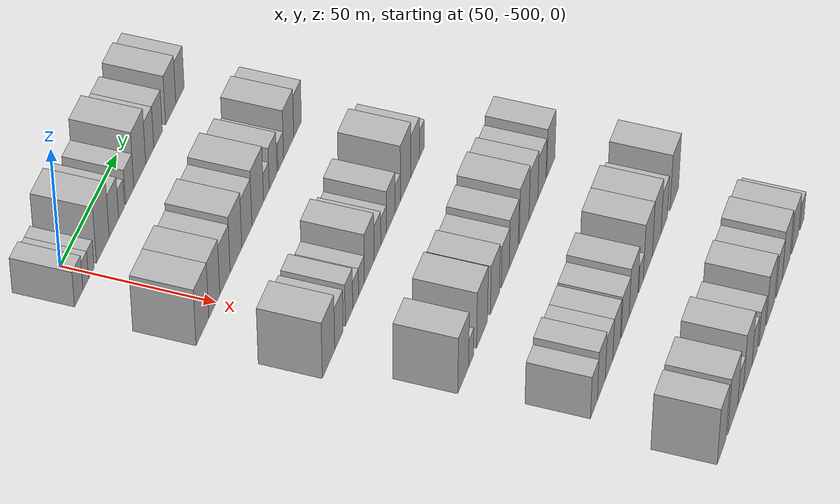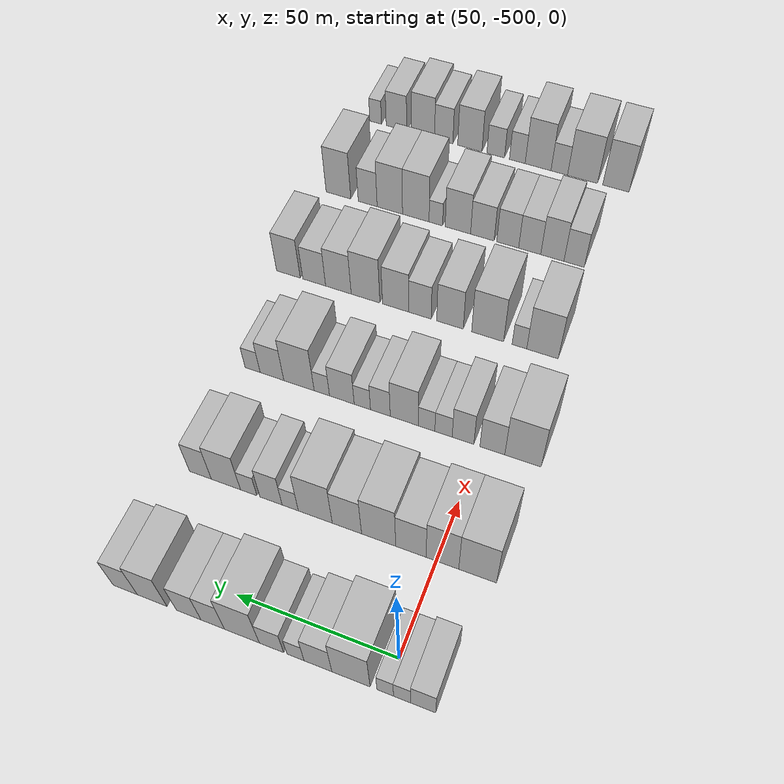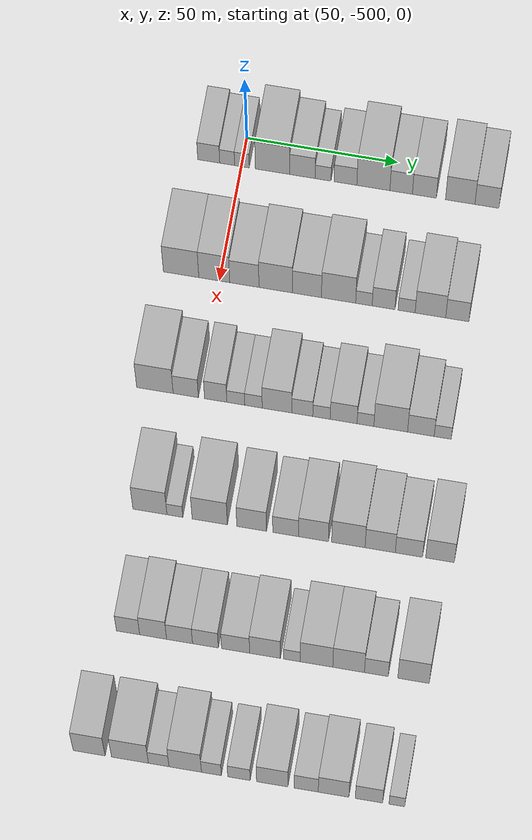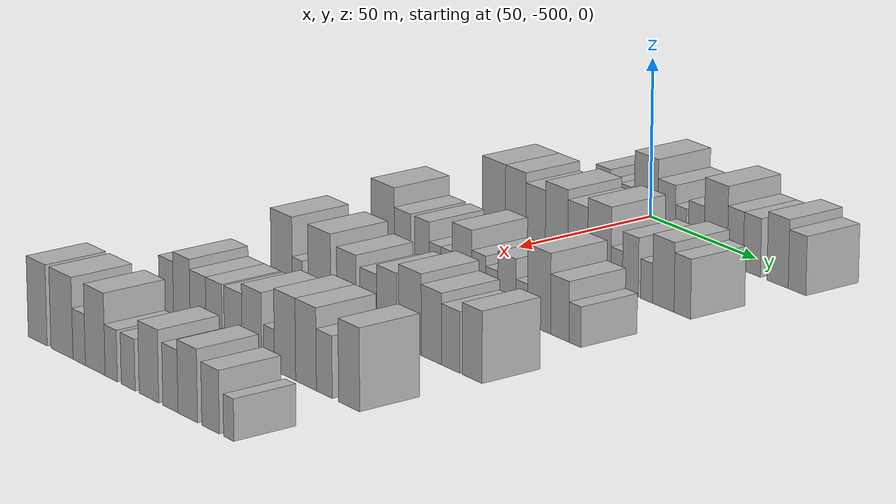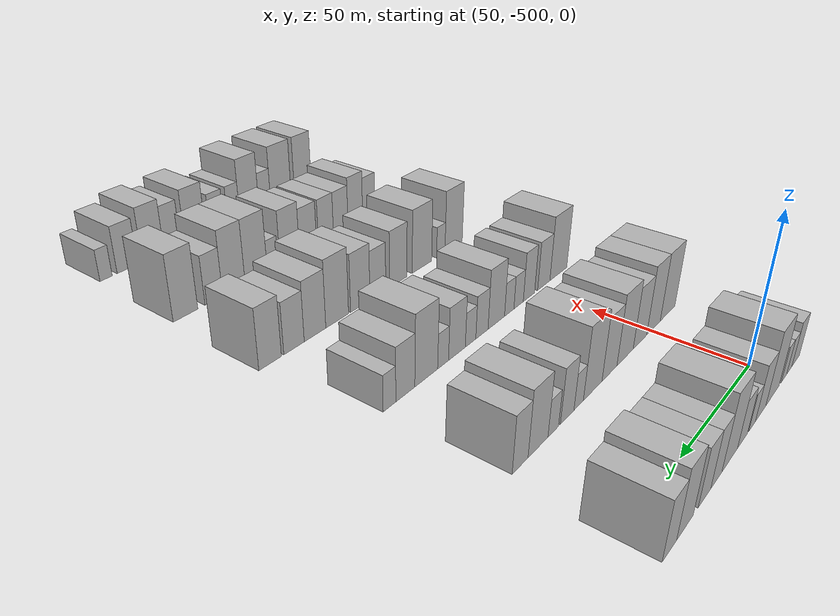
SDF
<sdf version="1.6">
 <world name="default">
  <model name="building_13">
   <static>1</static>
   <pose>50.0000 -510.8066 0 0.000000 0.000000 0.000000</pose>
   <link name="link">
    <pose>0 0 7.50 0 0 0</pose>
    <collision name="collision"><geometry><box><size>20.0000 7.2513 15.0000</size></box></geometry></collision>
    <visual name="visual">
     <cast_shadows>0</cast_shadows>
     <geometry><box><size>20.0000 7.2513 15.0000</size></box></geometry>
     <material>
      <script>
       <uri>model://HANNAS_wall/materials/scripts</uri>
       <uri>model://HANNAS_wall/materials/textures</uri>
       <name>vrc/HANNAS_wall</name>
      </script>
     </material>
    </visual>
   </link>
  </model>
  <model name="building_14">
   <static>1</static>
   <pose>50.0000 -504.7270 0 0.000000 0.000000 0.000000</pose>
   <link name="link">
    <pose>0 0 6.00 0 0 0</pose>
    <collision name="collision"><geometry><box><size>20.0000 4.9079 12.0000</size></box></geometry></collision>
    <visual name="visual">
     <cast_shadows>0</cast_shadows>
     <geometry><box><size>20.0000 4.9079 12.0000</size></box></geometry>
     <material>
      <script>
       <uri>model://HANNAS_wall/materials/scripts</uri>
       <uri>model://HANNAS_wall/materials/textures</uri>
       <name>vrc/HANNAS_wall</name>
      </script>
     </material>
    </visual>
   </link>
  </model>
  <model name="building_15">
   <static>1</static>
   <pose>50.0000 -499.8452 0 0.000000 0.000000 0.000000</pose>
   <link name="link">
    <pose>0 0 6.00 0 0 0</pose>
    <collision name="collision"><geometry><box><size>20.0000 4.8557 12.0000</size></box></geometry></collision>
    <visual name="visual">
     <cast_shadows>0</cast_shadows>
     <geometry><box><size>20.0000 4.8557 12.0000</size></box></geometry>
     <material>
      <script>
       <uri>model://HANNAS_wall/materials/scripts</uri>
       <uri>model://HANNAS_wall/materials/textures</uri>
       <name>vrc/HANNAS_wall</name>
      </script>
     </material>
    </visual>
   </link>
  </model>
  <model name="building_16">
   <static>1</static>
   <pose>50.0000 -489.7420 0 0.000000 0.000000 0.000000</pose>
   <link name="link">
    <pose>0 0 12.00 0 0 0</pose>
    <collision name="collision"><geometry><box><size>20.0000 11.3507 24.0000</size></box></geometry></collision>
    <visual name="visual">
     <cast_shadows>0</cast_shadows>
     <geometry><box><size>20.0000 11.3507 24.0000</size></box></geometry>
     <material>
      <script>
       <uri>model://HANNAS_wall/materials/scripts</uri>
       <uri>model://HANNAS_wall/materials/textures</uri>
       <name>vrc/HANNAS_wall</name>
      </script>
     </material>
    </visual>
   </link>
  </model>
  <model name="building_17">
   <static>1</static>
   <pose>50.0000 -479.8857 0 0.000000 0.000000 0.000000</pose>
   <link name="link">
    <pose>0 0 9.00 0 0 0</pose>
    <collision name="collision"><geometry><box><size>20.0000 8.3620 18.0000</size></box></geometry></collision>
    <visual name="visual">
     <cast_shadows>0</cast_shadows>
     <geometry><box><size>20.0000 8.3620 18.0000</size></box></geometry>
     <material>
      <script>
       <uri>model://HANNAS_wall/materials/scripts</uri>
       <uri>model://HANNAS_wall/materials/textures</uri>
       <name>vrc/HANNAS_wall</name>
      </script>
     </material>
    </visual>
   </link>
  </model>
  <model name="building_18">
   <static>1</static>
   <pose>50.0000 -473.1001 0 0.000000 0.000000 0.000000</pose>
   <link name="link">
    <pose>0 0 6.00 0 0 0</pose>
    <collision name="collision"><geometry><box><size>20.0000 5.2090 12.0000</size></box></geometry></collision>
    <visual name="visual">
     <cast_shadows>0</cast_shadows>
     <geometry><box><size>20.0000 5.2090 12.0000</size></box></geometry>
     <material>
      <script>
       <uri>model://HANNAS_wall/materials/scripts</uri>
       <uri>model://HANNAS_wall/materials/textures</uri>
       <name>vrc/HANNAS_wall</name>
      </script>
     </material>
    </visual>
   </link>
  </model>
  <model name="building_19">
   <static>1</static>
   <pose>50.0000 -465.7536 0 0.000000 0.000000 0.000000</pose>
   <link name="link">
    <pose>0 0 7.50 0 0 0</pose>
    <collision name="collision"><geometry><box><size>20.0000 7.4841 15.0000</size></box></geometry></collision>
    <visual name="visual">
     <cast_shadows>0</cast_shadows>
     <geometry><box><size>20.0000 7.4841 15.0000</size></box></geometry>
     <material>
      <script>
       <uri>model://HANNAS_wall/materials/scripts</uri>
       <uri>model://HANNAS_wall/materials/textures</uri>
       <name>vrc/HANNAS_wall</name>
      </script>
     </material>
    </visual>
   </link>
  </model>
  <model name="building_20">
   <static>1</static>
   <pose>50.0000 -456.5789 0 0.000000 0.000000 0.000000</pose>
   <link name="link">
    <pose>0 0 12.00 0 0 0</pose>
    <collision name="collision"><geometry><box><size>20.0000 10.8653 24.0000</size></box></geometry></collision>
    <visual name="visual">
     <cast_shadows>0</cast_shadows>
     <geometry><box><size>20.0000 10.8653 24.0000</size></box></geometry>
     <material>
      <script>
       <uri>model://HANNAS_wall/materials/scripts</uri>
       <uri>model://HANNAS_wall/materials/textures</uri>
       <name>vrc/HANNAS_wall</name>
      </script>
     </material>
    </visual>
   </link>
  </model>
  <model name="building_21">
   <static>1</static>
   <pose>50.0000 -447.4521 0 0.000000 0.000000 0.000000</pose>
   <link name="link">
    <pose>0 0 9.00 0 0 0</pose>
    <collision name="collision"><geometry><box><size>20.0000 7.3885 18.0000</size></box></geometry></collision>
    <visual name="visual">
     <cast_shadows>0</cast_shadows>
     <geometry><box><size>20.0000 7.3885 18.0000</size></box></geometry>
     <material>
      <script>
       <uri>model://HANNAS_wall/materials/scripts</uri>
       <uri>model://HANNAS_wall/materials/textures</uri>
       <name>vrc/HANNAS_wall</name>
      </script>
     </material>
    </visual>
   </link>
  </model>
  <model name="building_22">
   <static>1</static>
   <pose>50.0000 -439.8254 0 0.000000 0.000000 0.000000</pose>
   <link name="link">
    <pose>0 0 9.00 0 0 0</pose>
    <collision name="collision"><geometry><box><size>20.0000 7.8648 18.0000</size></box></geometry></collision>
    <visual name="visual">
     <cast_shadows>0</cast_shadows>
     <geometry><box><size>20.0000 7.8648 18.0000</size></box></geometry>
     <material>
      <script>
       <uri>model://HANNAS_wall/materials/scripts</uri>
       <uri>model://HANNAS_wall/materials/textures</uri>
       <name>vrc/HANNAS_wall</name>
      </script>
     </material>
    </visual>
   </link>
  </model>
  <model name="building_23">
   <static>1</static>
   <pose>50.0000 -428.0699 0 0.000000 0.000000 0.000000</pose>
   <link name="link">
    <pose>0 0 10.50 0 0 0</pose>
    <collision name="collision"><geometry><box><size>20.0000 9.6462 21.0000</size></box></geometry></collision>
    <visual name="visual">
     <cast_shadows>0</cast_shadows>
     <geometry><box><size>20.0000 9.6462 21.0000</size></box></geometry>
     <material>
      <script>
       <uri>model://HANNAS_wall/materials/scripts</uri>
       <uri>model://HANNAS_wall/materials/textures</uri>
       <name>vrc/HANNAS_wall</name>
      </script>
     </material>
    </visual>
   </link>
  </model>
  <model name="building_24">
   <static>1</static>
   <pose>50.0000 -419.3129 0 0.000000 0.000000 0.000000</pose>
   <link name="link">
    <pose>0 0 9.00 0 0 0</pose>
    <collision name="collision"><geometry><box><size>20.0000 7.8678 18.0000</size></box></geometry></collision>
    <visual name="visual">
     <cast_shadows>0</cast_shadows>
     <geometry><box><size>20.0000 7.8678 18.0000</size></box></geometry>
     <material>
      <script>
       <uri>model://HANNAS_wall/materials/scripts</uri>
       <uri>model://HANNAS_wall/materials/textures</uri>
       <name>vrc/HANNAS_wall</name>
      </script>
     </material>
    </visual>
   </link>
  </model>
  <model name="building_147">
   <static>1</static>
   <pose>90.0000 -512.6464 0 0.000000 0.000000 0.000000</pose>
   <link name="link">
    <pose>0 0 12.00 0 0 0</pose>
    <collision name="collision"><geometry><box><size>20.0000 11.5805 24.0000</size></box></geometry></collision>
    <visual name="visual">
     <cast_shadows>0</cast_shadows>
     <geometry><box><size>20.0000 11.5805 24.0000</size></box></geometry>
     <material>
      <script>
       <uri>model://HANNAS_wall/materials/scripts</uri>
       <uri>model://HANNAS_wall/materials/textures</uri>
       <name>vrc/HANNAS_wall</name>
      </script>
     </material>
    </visual>
   </link>
  </model>
  <model name="building_148">
   <static>1</static>
   <pose>90.0000 -501.7982 0 0.000000 0.000000 0.000000</pose>
   <link name="link">
    <pose>0 0 12.00 0 0 0</pose>
    <collision name="collision"><geometry><box><size>20.0000 10.1158 24.0000</size></box></geometry></collision>
    <visual name="visual">
     <cast_shadows>0</cast_shadows>
     <geometry><box><size>20.0000 10.1158 24.0000</size></box></geometry>
     <material>
      <script>
       <uri>model://HANNAS_wall/materials/scripts</uri>
       <uri>model://HANNAS_wall/materials/textures</uri>
       <name>vrc/HANNAS_wall</name>
      </script>
     </material>
    </visual>
   </link>
  </model>
  <model name="building_149">
   <static>1</static>
   <pose>90.0000 -491.9621 0 0.000000 0.000000 0.000000</pose>
   <link name="link">
    <pose>0 0 10.50 0 0 0</pose>
    <collision name="collision"><geometry><box><size>20.0000 9.5564 21.0000</size></box></geometry></collision>
    <visual name="visual">
     <cast_shadows>0</cast_shadows>
     <geometry><box><size>20.0000 9.5564 21.0000</size></box></geometry>
     <material>
      <script>
       <uri>model://HANNAS_wall/materials/scripts</uri>
       <uri>model://HANNAS_wall/materials/textures</uri>
       <name>vrc/HANNAS_wall</name>
      </script>
     </material>
    </visual>
   </link>
  </model>
  <model name="building_150">
   <static>1</static>
   <pose>90.0000 -481.7304 0 0.000000 0.000000 0.000000</pose>
   <link name="link">
    <pose>0 0 12.00 0 0 0</pose>
    <collision name="collision"><geometry><box><size>20.0000 10.9070 24.0000</size></box></geometry></collision>
    <visual name="visual">
     <cast_shadows>0</cast_shadows>
     <geometry><box><size>20.0000 10.9070 24.0000</size></box></geometry>
     <material>
      <script>
       <uri>model://HANNAS_wall/materials/scripts</uri>
       <uri>model://HANNAS_wall/materials/textures</uri>
       <name>vrc/HANNAS_wall</name>
      </script>
     </material>
    </visual>
   </link>
  </model>
  <model name="building_151">
   <static>1</static>
   <pose>90.0000 -471.5309 0 0.000000 0.000000 0.000000</pose>
   <link name="link">
    <pose>0 0 10.50 0 0 0</pose>
    <collision name="collision"><geometry><box><size>20.0000 9.4919 21.0000</size></box></geometry></collision>
    <visual name="visual">
     <cast_shadows>0</cast_shadows>
     <geometry><box><size>20.0000 9.4919 21.0000</size></box></geometry>
     <material>
      <script>
       <uri>model://HANNAS_wall/materials/scripts</uri>
       <uri>model://HANNAS_wall/materials/textures</uri>
       <name>vrc/HANNAS_wall</name>
      </script>
     </material>
    </visual>
   </link>
  </model>
  <model name="building_152">
   <static>1</static>
   <pose>90.0000 -461.2163 0 0.000000 0.000000 0.000000</pose>
   <link name="link">
    <pose>0 0 12.00 0 0 0</pose>
    <collision name="collision"><geometry><box><size>20.0000 11.1373 24.0000</size></box></geometry></collision>
    <visual name="visual">
     <cast_shadows>0</cast_shadows>
     <geometry><box><size>20.0000 11.1373 24.0000</size></box></geometry>
     <material>
      <script>
       <uri>model://HANNAS_wall/materials/scripts</uri>
       <uri>model://HANNAS_wall/materials/textures</uri>
       <name>vrc/HANNAS_wall</name>
      </script>
     </material>
    </visual>
   </link>
  </model>
  <model name="building_153">
   <static>1</static>
   <pose>90.0000 -452.9607 0 0.000000 0.000000 0.000000</pose>
   <link name="link">
    <pose>0 0 6.00 0 0 0</pose>
    <collision name="collision"><geometry><box><size>20.0000 5.3740 12.0000</size></box></geometry></collision>
    <visual name="visual">
     <cast_shadows>0</cast_shadows>
     <geometry><box><size>20.0000 5.3740 12.0000</size></box></geometry>
     <material>
      <script>
       <uri>model://HANNAS_wall/materials/scripts</uri>
       <uri>model://HANNAS_wall/materials/textures</uri>
       <name>vrc/HANNAS_wall</name>
      </script>
     </material>
    </visual>
   </link>
  </model>
  <model name="building_154">
   <static>1</static>
   <pose>90.0000 -446.5573 0 0.000000 0.000000 0.000000</pose>
   <link name="link">
    <pose>0 0 9.00 0 0 0</pose>
    <collision name="collision"><geometry><box><size>20.0000 7.4328 18.0000</size></box></geometry></collision>
    <visual name="visual">
     <cast_shadows>0</cast_shadows>
     <geometry><box><size>20.0000 7.4328 18.0000</size></box></geometry>
     <material>
      <script>
       <uri>model://HANNAS_wall/materials/scripts</uri>
       <uri>model://HANNAS_wall/materials/textures</uri>
       <name>vrc/HANNAS_wall</name>
      </script>
     </material>
    </visual>
   </link>
  </model>
  <model name="building_155">
   <static>1</static>
   <pose>90.0000 -439.0628 0 0.000000 0.000000 0.000000</pose>
   <link name="link">
    <pose>0 0 6.00 0 0 0</pose>
    <collision name="collision"><geometry><box><size>20.0000 5.5562 12.0000</size></box></geometry></collision>
    <visual name="visual">
     <cast_shadows>0</cast_shadows>
     <geometry><box><size>20.0000 5.5562 12.0000</size></box></geometry>
     <material>
      <script>
       <uri>model://HANNAS_wall/materials/scripts</uri>
       <uri>model://HANNAS_wall/materials/textures</uri>
       <name>vrc/HANNAS_wall</name>
      </script>
     </material>
    </visual>
   </link>
  </model>
  <model name="building_156">
   <static>1</static>
   <pose>90.0000 -431.3110 0 0.000000 0.000000 0.000000</pose>
   <link name="link">
    <pose>0 0 10.50 0 0 0</pose>
    <collision name="collision"><geometry><box><size>20.0000 9.9473 21.0000</size></box></geometry></collision>
    <visual name="visual">
     <cast_shadows>0</cast_shadows>
     <geometry><box><size>20.0000 9.9473 21.0000</size></box></geometry>
     <material>
      <script>
       <uri>model://HANNAS_wall/materials/scripts</uri>
       <uri>model://HANNAS_wall/materials/textures</uri>
       <name>vrc/HANNAS_wall</name>
      </script>
     </material>
    </visual>
   </link>
  </model>
  <model name="building_157">
   <static>1</static>
   <pose>90.0000 -422.5760 0 0.000000 0.000000 0.000000</pose>
   <link name="link">
    <pose>0 0 9.00 0 0 0</pose>
    <collision name="collision"><geometry><box><size>20.0000 7.5228 18.0000</size></box></geometry></collision>
    <visual name="visual">
     <cast_shadows>0</cast_shadows>
     <geometry><box><size>20.0000 7.5228 18.0000</size></box></geometry>
     <material>
      <script>
       <uri>model://HANNAS_wall/materials/scripts</uri>
       <uri>model://HANNAS_wall/materials/textures</uri>
       <name>vrc/HANNAS_wall</name>
      </script>
     </material>
    </visual>
   </link>
  </model>
  <model name="building_285">
   <static>1</static>
   <pose>130.0000 -513.8547 0 0.000000 0.000000 0.000000</pose>
   <link name="link">
    <pose>0 0 12.00 0 0 0</pose>
    <collision name="collision"><geometry><box><size>20.0000 11.8228 24.0000</size></box></geometry></collision>
    <visual name="visual">
     <cast_shadows>0</cast_shadows>
     <geometry><box><size>20.0000 11.8228 24.0000</size></box></geometry>
     <material>
      <script>
       <uri>model://HANNAS_wall/materials/scripts</uri>
       <uri>model://HANNAS_wall/materials/textures</uri>
       <name>vrc/HANNAS_wall</name>
      </script>
     </material>
    </visual>
   </link>
  </model>
  <model name="building_286">
   <static>1</static>
   <pose>130.0000 -503.8525 0 0.000000 0.000000 0.000000</pose>
   <link name="link">
    <pose>0 0 9.00 0 0 0</pose>
    <collision name="collision"><geometry><box><size>20.0000 8.1816 18.0000</size></box></geometry></collision>
    <visual name="visual">
     <cast_shadows>0</cast_shadows>
     <geometry><box><size>20.0000 8.1816 18.0000</size></box></geometry>
     <material>
      <script>
       <uri>model://HANNAS_wall/materials/scripts</uri>
       <uri>model://HANNAS_wall/materials/textures</uri>
       <name>vrc/HANNAS_wall</name>
      </script>
     </material>
    </visual>
   </link>
  </model>
  <model name="building_287">
   <static>1</static>
   <pose>130.0000 -494.1549 0 0.000000 0.000000 0.000000</pose>
   <link name="link">
    <pose>0 0 9.00 0 0 0</pose>
    <collision name="collision"><geometry><box><size>20.0000 7.2136 18.0000</size></box></geometry></collision>
    <visual name="visual">
     <cast_shadows>0</cast_shadows>
     <geometry><box><size>20.0000 7.2136 18.0000</size></box></geometry>
     <material>
      <script>
       <uri>model://HANNAS_wall/materials/scripts</uri>
       <uri>model://HANNAS_wall/materials/textures</uri>
       <name>vrc/HANNAS_wall</name>
      </script>
     </material>
    </visual>
   </link>
  </model>
  <model name="building_288">
   <static>1</static>
   <pose>130.0000 -487.6443 0 0.000000 0.000000 0.000000</pose>
   <link name="link">
    <pose>0 0 6.00 0 0 0</pose>
    <collision name="collision"><geometry><box><size>20.0000 5.8077 12.0000</size></box></geometry></collision>
    <visual name="visual">
     <cast_shadows>0</cast_shadows>
     <geometry><box><size>20.0000 5.8077 12.0000</size></box></geometry>
     <material>
      <script>
       <uri>model://HANNAS_wall/materials/scripts</uri>
       <uri>model://HANNAS_wall/materials/textures</uri>
       <name>vrc/HANNAS_wall</name>
      </script>
     </material>
    </visual>
   </link>
  </model>
  <model name="building_289">
   <static>1</static>
   <pose>130.0000 -481.9223 0 0.000000 0.000000 0.000000</pose>
   <link name="link">
    <pose>0 0 6.00 0 0 0</pose>
    <collision name="collision"><geometry><box><size>20.0000 5.6363 12.0000</size></box></geometry></collision>
    <visual name="visual">
     <cast_shadows>0</cast_shadows>
     <geometry><box><size>20.0000 5.6363 12.0000</size></box></geometry>
     <material>
      <script>
       <uri>model://HANNAS_wall/materials/scripts</uri>
       <uri>model://HANNAS_wall/materials/textures</uri>
       <name>vrc/HANNAS_wall</name>
      </script>
     </material>
    </visual>
   </link>
  </model>
  <model name="building_290">
   <static>1</static>
   <pose>130.0000 -474.3301 0 0.000000 0.000000 0.000000</pose>
   <link name="link">
    <pose>0 0 10.50 0 0 0</pose>
    <collision name="collision"><geometry><box><size>20.0000 9.5481 21.0000</size></box></geometry></collision>
    <visual name="visual">
     <cast_shadows>0</cast_shadows>
     <geometry><box><size>20.0000 9.5481 21.0000</size></box></geometry>
     <material>
      <script>
       <uri>model://HANNAS_wall/materials/scripts</uri>
       <uri>model://HANNAS_wall/materials/textures</uri>
       <name>vrc/HANNAS_wall</name>
      </script>
     </material>
    </visual>
   </link>
  </model>
  <model name="building_291">
   <static>1</static>
   <pose>130.0000 -466.1536 0 0.000000 0.000000 0.000000</pose>
   <link name="link">
    <pose>0 0 7.50 0 0 0</pose>
    <collision name="collision"><geometry><box><size>20.0000 6.8048 15.0000</size></box></geometry></collision>
    <visual name="visual">
     <cast_shadows>0</cast_shadows>
     <geometry><box><size>20.0000 6.8048 15.0000</size></box></geometry>
     <material>
      <script>
       <uri>model://HANNAS_wall/materials/scripts</uri>
       <uri>model://HANNAS_wall/materials/textures</uri>
       <name>vrc/HANNAS_wall</name>
      </script>
     </material>
    </visual>
   </link>
  </model>
  <model name="building_292">
   <static>1</static>
   <pose>130.0000 -459.9268 0 0.000000 0.000000 0.000000</pose>
   <link name="link">
    <pose>0 0 6.00 0 0 0</pose>
    <collision name="collision"><geometry><box><size>20.0000 5.6489 12.0000</size></box></geometry></collision>
    <visual name="visual">
     <cast_shadows>0</cast_shadows>
     <geometry><box><size>20.0000 5.6489 12.0000</size></box></geometry>
     <material>
      <script>
       <uri>model://HANNAS_wall/materials/scripts</uri>
       <uri>model://HANNAS_wall/materials/textures</uri>
       <name>vrc/HANNAS_wall</name>
      </script>
     </material>
    </visual>
   </link>
  </model>
  <model name="building_293">
   <static>1</static>
   <pose>130.0000 -452.7710 0 0.000000 0.000000 0.000000</pose>
   <link name="link">
    <pose>0 0 9.00 0 0 0</pose>
    <collision name="collision"><geometry><box><size>20.0000 8.6628 18.0000</size></box></geometry></collision>
    <visual name="visual">
     <cast_shadows>0</cast_shadows>
     <geometry><box><size>20.0000 8.6628 18.0000</size></box></geometry>
     <material>
      <script>
       <uri>model://HANNAS_wall/materials/scripts</uri>
       <uri>model://HANNAS_wall/materials/textures</uri>
       <name>vrc/HANNAS_wall</name>
      </script>
     </material>
    </visual>
   </link>
  </model>
  <model name="building_294">
   <static>1</static>
   <pose>130.0000 -445.7290 0 0.000000 0.000000 0.000000</pose>
   <link name="link">
    <pose>0 0 6.00 0 0 0</pose>
    <collision name="collision"><geometry><box><size>20.0000 5.4211 12.0000</size></box></geometry></collision>
    <visual name="visual">
     <cast_shadows>0</cast_shadows>
     <geometry><box><size>20.0000 5.4211 12.0000</size></box></geometry>
     <material>
      <script>
       <uri>model://HANNAS_wall/materials/scripts</uri>
       <uri>model://HANNAS_wall/materials/textures</uri>
       <name>vrc/HANNAS_wall</name>
      </script>
     </material>
    </visual>
   </link>
  </model>
  <model name="building_295">
   <static>1</static>
   <pose>130.0000 -437.5871 0 0.000000 0.000000 0.000000</pose>
   <link name="link">
    <pose>0 0 12.00 0 0 0</pose>
    <collision name="collision"><geometry><box><size>20.0000 10.8626 24.0000</size></box></geometry></collision>
    <visual name="visual">
     <cast_shadows>0</cast_shadows>
     <geometry><box><size>20.0000 10.8626 24.0000</size></box></geometry>
     <material>
      <script>
       <uri>model://HANNAS_wall/materials/scripts</uri>
       <uri>model://HANNAS_wall/materials/textures</uri>
       <name>vrc/HANNAS_wall</name>
      </script>
     </material>
    </visual>
   </link>
  </model>
  <model name="building_296">
   <static>1</static>
   <pose>130.0000 -427.8690 0 0.000000 0.000000 0.000000</pose>
   <link name="link">
    <pose>0 0 9.00 0 0 0</pose>
    <collision name="collision"><geometry><box><size>20.0000 8.5737 18.0000</size></box></geometry></collision>
    <visual name="visual">
     <cast_shadows>0</cast_shadows>
     <geometry><box><size>20.0000 8.5737 18.0000</size></box></geometry>
     <material>
      <script>
       <uri>model://HANNAS_wall/materials/scripts</uri>
       <uri>model://HANNAS_wall/materials/textures</uri>
       <name>vrc/HANNAS_wall</name>
      </script>
     </material>
    </visual>
   </link>
  </model>
  <model name="building_297">
   <static>1</static>
   <pose>130.0000 -420.8474 0 0.000000 0.000000 0.000000</pose>
   <link name="link">
    <pose>0 0 6.00 0 0 0</pose>
    <collision name="collision"><geometry><box><size>20.0000 5.4694 12.0000</size></box></geometry></collision>
    <visual name="visual">
     <cast_shadows>0</cast_shadows>
     <geometry><box><size>20.0000 5.4694 12.0000</size></box></geometry>
     <material>
      <script>
       <uri>model://HANNAS_wall/materials/scripts</uri>
       <uri>model://HANNAS_wall/materials/textures</uri>
       <name>vrc/HANNAS_wall</name>
      </script>
     </material>
    </visual>
   </link>
  </model>
  <model name="building_426">
   <static>1</static>
   <pose>170.0000 -508.1060 0 0.000000 0.000000 0.000000</pose>
   <link name="link">
    <pose>0 0 12.00 0 0 0</pose>
    <collision name="collision"><geometry><box><size>20.0000 10.9231 24.0000</size></box></geometry></collision>
    <visual name="visual">
     <cast_shadows>0</cast_shadows>
     <geometry><box><size>20.0000 10.9231 24.0000</size></box></geometry>
     <material>
      <script>
       <uri>model://HANNAS_wall/materials/scripts</uri>
       <uri>model://HANNAS_wall/materials/textures</uri>
       <name>vrc/HANNAS_wall</name>
      </script>
     </material>
    </visual>
   </link>
  </model>
  <model name="building_427">
   <static>1</static>
   <pose>170.0000 -500.0902 0 0.000000 0.000000 0.000000</pose>
   <link name="link">
    <pose>0 0 6.00 0 0 0</pose>
    <collision name="collision"><geometry><box><size>20.0000 5.1084 12.0000</size></box></geometry></collision>
    <visual name="visual">
     <cast_shadows>0</cast_shadows>
     <geometry><box><size>20.0000 5.1084 12.0000</size></box></geometry>
     <material>
      <script>
       <uri>model://HANNAS_wall/materials/scripts</uri>
       <uri>model://HANNAS_wall/materials/textures</uri>
       <name>vrc/HANNAS_wall</name>
      </script>
     </material>
    </visual>
   </link>
  </model>
  <model name="building_428">
   <static>1</static>
   <pose>170.0000 -488.8775 0 0.000000 0.000000 0.000000</pose>
   <link name="link">
    <pose>0 0 12.00 0 0 0</pose>
    <collision name="collision"><geometry><box><size>20.0000 11.3170 24.0000</size></box></geometry></collision>
    <visual name="visual">
     <cast_shadows>0</cast_shadows>
     <geometry><box><size>20.0000 11.3170 24.0000</size></box></geometry>
     <material>
      <script>
       <uri>model://HANNAS_wall/materials/scripts</uri>
       <uri>model://HANNAS_wall/materials/textures</uri>
       <name>vrc/HANNAS_wall</name>
      </script>
     </material>
    </visual>
   </link>
  </model>
  <model name="building_429">
   <static>1</static>
   <pose>170.0000 -475.4535 0 0.000000 0.000000 0.000000</pose>
   <link name="link">
    <pose>0 0 10.50 0 0 0</pose>
    <collision name="collision"><geometry><box><size>20.0000 9.5309 21.0000</size></box></geometry></collision>
    <visual name="visual">
     <cast_shadows>0</cast_shadows>
     <geometry><box><size>20.0000 9.5309 21.0000</size></box></geometry>
     <material>
      <script>
       <uri>model://HANNAS_wall/materials/scripts</uri>
       <uri>model://HANNAS_wall/materials/textures</uri>
       <name>vrc/HANNAS_wall</name>
      </script>
     </material>
    </visual>
   </link>
  </model>
  <model name="building_430">
   <static>1</static>
   <pose>170.0000 -464.5698 0 0.000000 0.000000 0.000000</pose>
   <link name="link">
    <pose>0 0 9.00 0 0 0</pose>
    <collision name="collision"><geometry><box><size>20.0000 8.2366 18.0000</size></box></geometry></collision>
    <visual name="visual">
     <cast_shadows>0</cast_shadows>
     <geometry><box><size>20.0000 8.2366 18.0000</size></box></geometry>
     <material>
      <script>
       <uri>model://HANNAS_wall/materials/scripts</uri>
       <uri>model://HANNAS_wall/materials/textures</uri>
       <name>vrc/HANNAS_wall</name>
      </script>
     </material>
    </visual>
   </link>
  </model>
  <model name="building_431">
   <static>1</static>
   <pose>170.0000 -455.6515 0 0.000000 0.000000 0.000000</pose>
   <link name="link">
    <pose>0 0 10.50 0 0 0</pose>
    <collision name="collision"><geometry><box><size>20.0000 9.6001 21.0000</size></box></geometry></collision>
    <visual name="visual">
     <cast_shadows>0</cast_shadows>
     <geometry><box><size>20.0000 9.6001 21.0000</size></box></geometry>
     <material>
      <script>
       <uri>model://HANNAS_wall/materials/scripts</uri>
       <uri>model://HANNAS_wall/materials/textures</uri>
       <name>vrc/HANNAS_wall</name>
      </script>
     </material>
    </visual>
   </link>
  </model>
  <model name="building_432">
   <static>1</static>
   <pose>170.0000 -444.4948 0 0.000000 0.000000 0.000000</pose>
   <link name="link">
    <pose>0 0 12.00 0 0 0</pose>
    <collision name="collision"><geometry><box><size>20.0000 10.7132 24.0000</size></box></geometry></collision>
    <visual name="visual">
     <cast_shadows>0</cast_shadows>
     <geometry><box><size>20.0000 10.7132 24.0000</size></box></geometry>
     <material>
      <script>
       <uri>model://HANNAS_wall/materials/scripts</uri>
       <uri>model://HANNAS_wall/materials/textures</uri>
       <name>vrc/HANNAS_wall</name>
      </script>
     </material>
    </visual>
   </link>
  </model>
  <model name="building_433">
   <static>1</static>
   <pose>170.0000 -434.3183 0 0.000000 0.000000 0.000000</pose>
   <link name="link">
    <pose>0 0 10.50 0 0 0</pose>
    <collision name="collision"><geometry><box><size>20.0000 9.6400 21.0000</size></box></geometry></collision>
    <visual name="visual">
     <cast_shadows>0</cast_shadows>
     <geometry><box><size>20.0000 9.6400 21.0000</size></box></geometry>
     <material>
      <script>
       <uri>model://HANNAS_wall/materials/scripts</uri>
       <uri>model://HANNAS_wall/materials/textures</uri>
       <name>vrc/HANNAS_wall</name>
      </script>
     </material>
    </visual>
   </link>
  </model>
  <model name="building_434">
   <static>1</static>
   <pose>170.0000 -425.1513 0 0.000000 0.000000 0.000000</pose>
   <link name="link">
    <pose>0 0 9.00 0 0 0</pose>
    <collision name="collision"><geometry><box><size>20.0000 8.6940 18.0000</size></box></geometry></collision>
    <visual name="visual">
     <cast_shadows>0</cast_shadows>
     <geometry><box><size>20.0000 8.6940 18.0000</size></box></geometry>
     <material>
      <script>
       <uri>model://HANNAS_wall/materials/scripts</uri>
       <uri>model://HANNAS_wall/materials/textures</uri>
       <name>vrc/HANNAS_wall</name>
      </script>
     </material>
    </visual>
   </link>
  </model>
  <model name="building_435">
   <static>1</static>
   <pose>170.0000 -415.2370 0 0.000000 0.000000 0.000000</pose>
   <link name="link">
    <pose>0 0 10.50 0 0 0</pose>
    <collision name="collision"><geometry><box><size>20.0000 9.1346 21.0000</size></box></geometry></collision>
    <visual name="visual">
     <cast_shadows>0</cast_shadows>
     <geometry><box><size>20.0000 9.1346 21.0000</size></box></geometry>
     <material>
      <script>
       <uri>model://HANNAS_wall/materials/scripts</uri>
       <uri>model://HANNAS_wall/materials/textures</uri>
       <name>vrc/HANNAS_wall</name>
      </script>
     </material>
    </visual>
   </link>
  </model>
  <model name="building_560">
   <static>1</static>
   <pose>210.0000 -507.6947 0 0.000000 0.000000 0.000000</pose>
   <link name="link">
    <pose>0 0 9.00 0 0 0</pose>
    <collision name="collision"><geometry><box><size>20.0000 7.4083 18.0000</size></box></geometry></collision>
    <visual name="visual">
     <cast_shadows>0</cast_shadows>
     <geometry><box><size>20.0000 7.4083 18.0000</size></box></geometry>
     <material>
      <script>
       <uri>model://HANNAS_wall/materials/scripts</uri>
       <uri>model://HANNAS_wall/materials/textures</uri>
       <name>vrc/HANNAS_wall</name>
      </script>
     </material>
    </visual>
   </link>
  </model>
  <model name="building_561">
   <static>1</static>
   <pose>210.0000 -499.7090 0 0.000000 0.000000 0.000000</pose>
   <link name="link">
    <pose>0 0 10.50 0 0 0</pose>
    <collision name="collision"><geometry><box><size>20.0000 8.5630 21.0000</size></box></geometry></collision>
    <visual name="visual">
     <cast_shadows>0</cast_shadows>
     <geometry><box><size>20.0000 8.5630 21.0000</size></box></geometry>
     <material>
      <script>
       <uri>model://HANNAS_wall/materials/scripts</uri>
       <uri>model://HANNAS_wall/materials/textures</uri>
       <name>vrc/HANNAS_wall</name>
      </script>
     </material>
    </visual>
   </link>
  </model>
  <model name="building_562">
   <static>1</static>
   <pose>210.0000 -491.3005 0 0.000000 0.000000 0.000000</pose>
   <link name="link">
    <pose>0 0 9.00 0 0 0</pose>
    <collision name="collision"><geometry><box><size>20.0000 8.2540 18.0000</size></box></geometry></collision>
    <visual name="visual">
     <cast_shadows>0</cast_shadows>
     <geometry><box><size>20.0000 8.2540 18.0000</size></box></geometry>
     <material>
      <script>
       <uri>model://HANNAS_wall/materials/scripts</uri>
       <uri>model://HANNAS_wall/materials/textures</uri>
       <name>vrc/HANNAS_wall</name>
      </script>
     </material>
    </visual>
   </link>
  </model>
  <model name="building_563">
   <static>1</static>
   <pose>210.0000 -483.0654 0 0.000000 0.000000 0.000000</pose>
   <link name="link">
    <pose>0 0 9.00 0 0 0</pose>
    <collision name="collision"><geometry><box><size>20.0000 8.2162 18.0000</size></box></geometry></collision>
    <visual name="visual">
     <cast_shadows>0</cast_shadows>
     <geometry><box><size>20.0000 8.2162 18.0000</size></box></geometry>
     <material>
      <script>
       <uri>model://HANNAS_wall/materials/scripts</uri>
       <uri>model://HANNAS_wall/materials/textures</uri>
       <name>vrc/HANNAS_wall</name>
      </script>
     </material>
    </visual>
   </link>
  </model>
  <model name="building_564">
   <static>1</static>
   <pose>210.0000 -473.4864 0 0.000000 0.000000 0.000000</pose>
   <link name="link">
    <pose>0 0 9.00 0 0 0</pose>
    <collision name="collision"><geometry><box><size>20.0000 8.9418 18.0000</size></box></geometry></collision>
    <visual name="visual">
     <cast_shadows>0</cast_shadows>
     <geometry><box><size>20.0000 8.9418 18.0000</size></box></geometry>
     <material>
      <script>
       <uri>model://HANNAS_wall/materials/scripts</uri>
       <uri>model://HANNAS_wall/materials/textures</uri>
       <name>vrc/HANNAS_wall</name>
      </script>
     </material>
    </visual>
   </link>
  </model>
  <model name="building_565">
   <static>1</static>
   <pose>210.0000 -464.1378 0 0.000000 0.000000 0.000000</pose>
   <link name="link">
    <pose>0 0 10.50 0 0 0</pose>
    <collision name="collision"><geometry><box><size>20.0000 9.7554 21.0000</size></box></geometry></collision>
    <visual name="visual">
     <cast_shadows>0</cast_shadows>
     <geometry><box><size>20.0000 9.7554 21.0000</size></box></geometry>
     <material>
      <script>
       <uri>model://HANNAS_wall/materials/scripts</uri>
       <uri>model://HANNAS_wall/materials/textures</uri>
       <name>vrc/HANNAS_wall</name>
      </script>
     </material>
    </visual>
   </link>
  </model>
  <model name="building_566">
   <static>1</static>
   <pose>210.0000 -455.6339 0 0.000000 0.000000 0.000000</pose>
   <link name="link">
    <pose>0 0 6.00 0 0 0</pose>
    <collision name="collision"><geometry><box><size>20.0000 5.2523 12.0000</size></box></geometry></collision>
    <visual name="visual">
     <cast_shadows>0</cast_shadows>
     <geometry><box><size>20.0000 5.2523 12.0000</size></box></geometry>
     <material>
      <script>
       <uri>model://HANNAS_wall/materials/scripts</uri>
       <uri>model://HANNAS_wall/materials/textures</uri>
       <name>vrc/HANNAS_wall</name>
      </script>
     </material>
    </visual>
   </link>
  </model>
  <model name="building_567">
   <static>1</static>
   <pose>210.0000 -447.8264 0 0.000000 0.000000 0.000000</pose>
   <link name="link">
    <pose>0 0 12.00 0 0 0</pose>
    <collision name="collision"><geometry><box><size>20.0000 10.3626 24.0000</size></box></geometry></collision>
    <visual name="visual">
     <cast_shadows>0</cast_shadows>
     <geometry><box><size>20.0000 10.3626 24.0000</size></box></geometry>
     <material>
      <script>
       <uri>model://HANNAS_wall/materials/scripts</uri>
       <uri>model://HANNAS_wall/materials/textures</uri>
       <name>vrc/HANNAS_wall</name>
      </script>
     </material>
    </visual>
   </link>
  </model>
  <model name="building_568">
   <static>1</static>
   <pose>210.0000 -437.6356 0 0.000000 0.000000 0.000000</pose>
   <link name="link">
    <pose>0 0 12.00 0 0 0</pose>
    <collision name="collision"><geometry><box><size>20.0000 10.0189 24.0000</size></box></geometry></collision>
    <visual name="visual">
     <cast_shadows>0</cast_shadows>
     <geometry><box><size>20.0000 10.0189 24.0000</size></box></geometry>
     <material>
      <script>
       <uri>model://HANNAS_wall/materials/scripts</uri>
       <uri>model://HANNAS_wall/materials/textures</uri>
       <name>vrc/HANNAS_wall</name>
      </script>
     </material>
    </visual>
   </link>
  </model>
  <model name="building_569">
   <static>1</static>
   <pose>210.0000 -428.8594 0 0.000000 0.000000 0.000000</pose>
   <link name="link">
    <pose>0 0 9.00 0 0 0</pose>
    <collision name="collision"><geometry><box><size>20.0000 7.5335 18.0000</size></box></geometry></collision>
    <visual name="visual">
     <cast_shadows>0</cast_shadows>
     <geometry><box><size>20.0000 7.5335 18.0000</size></box></geometry>
     <material>
      <script>
       <uri>model://HANNAS_wall/materials/scripts</uri>
       <uri>model://HANNAS_wall/materials/textures</uri>
       <name>vrc/HANNAS_wall</name>
      </script>
     </material>
    </visual>
   </link>
  </model>
  <model name="building_570">
   <static>1</static>
   <pose>210.0000 -417.1139 0 0.000000 0.000000 0.000000</pose>
   <link name="link">
    <pose>0 0 12.00 0 0 0</pose>
    <collision name="collision"><geometry><box><size>20.0000 9.9576 24.0000</size></box></geometry></collision>
    <visual name="visual">
     <cast_shadows>0</cast_shadows>
     <geometry><box><size>20.0000 9.9576 24.0000</size></box></geometry>
     <material>
      <script>
       <uri>model://HANNAS_wall/materials/scripts</uri>
       <uri>model://HANNAS_wall/materials/textures</uri>
       <name>vrc/HANNAS_wall</name>
      </script>
     </material>
    </visual>
   </link>
  </model>
  <model name="building_696">
   <static>1</static>
   <pose>250.0000 -512.5161 0 0.000000 0.000000 0.000000</pose>
   <link name="link">
    <pose>0 0 12.00 0 0 0</pose>
    <collision name="collision"><geometry><box><size>20.0000 10.0856 24.0000</size></box></geometry></collision>
    <visual name="visual">
     <cast_shadows>0</cast_shadows>
     <geometry><box><size>20.0000 10.0856 24.0000</size></box></geometry>
     <material>
      <script>
       <uri>model://HANNAS_wall/materials/scripts</uri>
       <uri>model://HANNAS_wall/materials/textures</uri>
       <name>vrc/HANNAS_wall</name>
      </script>
     </material>
    </visual>
   </link>
  </model>
  <model name="building_697">
   <static>1</static>
   <pose>250.0000 -499.6565 0 0.000000 0.000000 0.000000</pose>
   <link name="link">
    <pose>0 0 12.00 0 0 0</pose>
    <collision name="collision"><geometry><box><size>20.0000 11.6337 24.0000</size></box></geometry></collision>
    <visual name="visual">
     <cast_shadows>0</cast_shadows>
     <geometry><box><size>20.0000 11.6337 24.0000</size></box></geometry>
     <material>
      <script>
       <uri>model://HANNAS_wall/materials/scripts</uri>
       <uri>model://HANNAS_wall/materials/textures</uri>
       <name>vrc/HANNAS_wall</name>
      </script>
     </material>
    </visual>
   </link>
  </model>
  <model name="building_698">
   <static>1</static>
   <pose>250.0000 -490.5952 0 0.000000 0.000000 0.000000</pose>
   <link name="link">
    <pose>0 0 7.50 0 0 0</pose>
    <collision name="collision"><geometry><box><size>20.0000 6.4889 15.0000</size></box></geometry></collision>
    <visual name="visual">
     <cast_shadows>0</cast_shadows>
     <geometry><box><size>20.0000 6.4889 15.0000</size></box></geometry>
     <material>
      <script>
       <uri>model://HANNAS_wall/materials/scripts</uri>
       <uri>model://HANNAS_wall/materials/textures</uri>
       <name>vrc/HANNAS_wall</name>
      </script>
     </material>
    </visual>
   </link>
  </model>
  <model name="building_699">
   <static>1</static>
   <pose>250.0000 -482.2327 0 0.000000 0.000000 0.000000</pose>
   <link name="link">
    <pose>0 0 12.00 0 0 0</pose>
    <collision name="collision"><geometry><box><size>20.0000 10.2361 24.0000</size></box></geometry></collision>
    <visual name="visual">
     <cast_shadows>0</cast_shadows>
     <geometry><box><size>20.0000 10.2361 24.0000</size></box></geometry>
     <material>
      <script>
       <uri>model://HANNAS_wall/materials/scripts</uri>
       <uri>model://HANNAS_wall/materials/textures</uri>
       <name>vrc/HANNAS_wall</name>
      </script>
     </material>
    </visual>
   </link>
  </model>
  <model name="building_700">
   <static>1</static>
   <pose>250.0000 -473.9866 0 0.000000 0.000000 0.000000</pose>
   <link name="link">
    <pose>0 0 7.50 0 0 0</pose>
    <collision name="collision"><geometry><box><size>20.0000 6.2563 15.0000</size></box></geometry></collision>
    <visual name="visual">
     <cast_shadows>0</cast_shadows>
     <geometry><box><size>20.0000 6.2563 15.0000</size></box></geometry>
     <material>
      <script>
       <uri>model://HANNAS_wall/materials/scripts</uri>
       <uri>model://HANNAS_wall/materials/textures</uri>
       <name>vrc/HANNAS_wall</name>
      </script>
     </material>
    </visual>
   </link>
  </model>
  <model name="building_701">
   <static>1</static>
   <pose>250.0000 -465.3236 0 0.000000 0.000000 0.000000</pose>
   <link name="link">
    <pose>0 0 7.50 0 0 0</pose>
    <collision name="collision"><geometry><box><size>20.0000 7.0697 15.0000</size></box></geometry></collision>
    <visual name="visual">
     <cast_shadows>0</cast_shadows>
     <geometry><box><size>20.0000 7.0697 15.0000</size></box></geometry>
     <material>
      <script>
       <uri>model://HANNAS_wall/materials/scripts</uri>
       <uri>model://HANNAS_wall/materials/textures</uri>
       <name>vrc/HANNAS_wall</name>
      </script>
     </material>
    </visual>
   </link>
  </model>
  <model name="building_702">
   <static>1</static>
   <pose>250.0000 -454.8586 0 0.000000 0.000000 0.000000</pose>
   <link name="link">
    <pose>0 0 10.50 0 0 0</pose>
    <collision name="collision"><geometry><box><size>20.0000 9.8602 21.0000</size></box></geometry></collision>
    <visual name="visual">
     <cast_shadows>0</cast_shadows>
     <geometry><box><size>20.0000 9.8602 21.0000</size></box></geometry>
     <material>
      <script>
       <uri>model://HANNAS_wall/materials/scripts</uri>
       <uri>model://HANNAS_wall/materials/textures</uri>
       <name>vrc/HANNAS_wall</name>
      </script>
     </material>
    </visual>
   </link>
  </model>
  <model name="building_703">
   <static>1</static>
   <pose>250.0000 -444.1677 0 0.000000 0.000000 0.000000</pose>
   <link name="link">
    <pose>0 0 9.00 0 0 0</pose>
    <collision name="collision"><geometry><box><size>20.0000 7.5217 18.0000</size></box></geometry></collision>
    <visual name="visual">
     <cast_shadows>0</cast_shadows>
     <geometry><box><size>20.0000 7.5217 18.0000</size></box></geometry>
     <material>
      <script>
       <uri>model://HANNAS_wall/materials/scripts</uri>
       <uri>model://HANNAS_wall/materials/textures</uri>
       <name>vrc/HANNAS_wall</name>
      </script>
     </material>
    </visual>
   </link>
  </model>
  <model name="building_704">
   <static>1</static>
   <pose>250.0000 -435.5999 0 0.000000 0.000000 0.000000</pose>
   <link name="link">
    <pose>0 0 10.50 0 0 0</pose>
    <collision name="collision"><geometry><box><size>20.0000 9.6138 21.0000</size></box></geometry></collision>
    <visual name="visual">
     <cast_shadows>0</cast_shadows>
     <geometry><box><size>20.0000 9.6138 21.0000</size></box></geometry>
     <material>
      <script>
       <uri>model://HANNAS_wall/materials/scripts</uri>
       <uri>model://HANNAS_wall/materials/textures</uri>
       <name>vrc/HANNAS_wall</name>
      </script>
     </material>
    </visual>
   </link>
  </model>
  <model name="building_705">
   <static>1</static>
   <pose>250.0000 -424.5150 0 0.000000 0.000000 0.000000</pose>
   <link name="link">
    <pose>0 0 9.00 0 0 0</pose>
    <collision name="collision"><geometry><box><size>20.0000 8.5560 18.0000</size></box></geometry></collision>
    <visual name="visual">
     <cast_shadows>0</cast_shadows>
     <geometry><box><size>20.0000 8.5560 18.0000</size></box></geometry>
     <material>
      <script>
       <uri>model://HANNAS_wall/materials/scripts</uri>
       <uri>model://HANNAS_wall/materials/textures</uri>
       <name>vrc/HANNAS_wall</name>
      </script>
     </material>
    </visual>
   </link>
  </model>
  <model name="building_706">
   <static>1</static>
   <pose>250.0000 -415.7668 0 0.000000 0.000000 0.000000</pose>
   <link name="link">
    <pose>0 0 6.00 0 0 0</pose>
    <collision name="collision"><geometry><box><size>20.0000 4.9404 12.0000</size></box></geometry></collision>
    <visual name="visual">
     <cast_shadows>0</cast_shadows>
     <geometry><box><size>20.0000 4.9404 12.0000</size></box></geometry>
     <material>
      <script>
       <uri>model://HANNAS_wall/materials/scripts</uri>
       <uri>model://HANNAS_wall/materials/textures</uri>
       <name>vrc/HANNAS_wall</name>
      </script>
     </material>
    </visual>
   </link>
  </model>
 </world>
</sdf>
